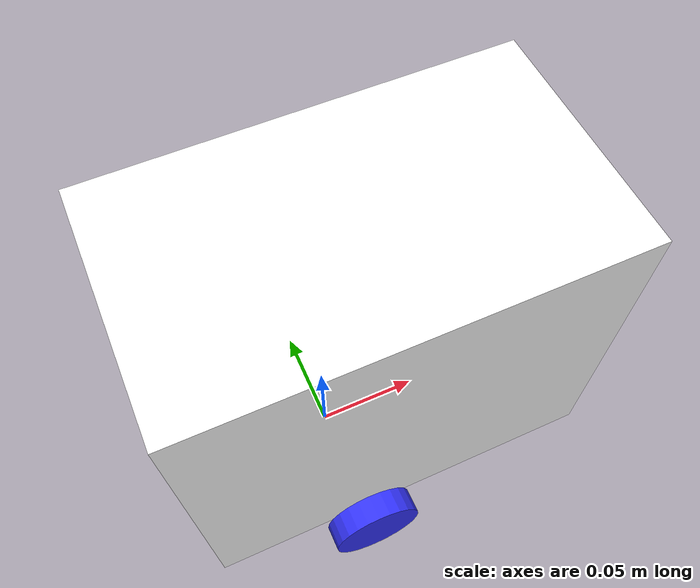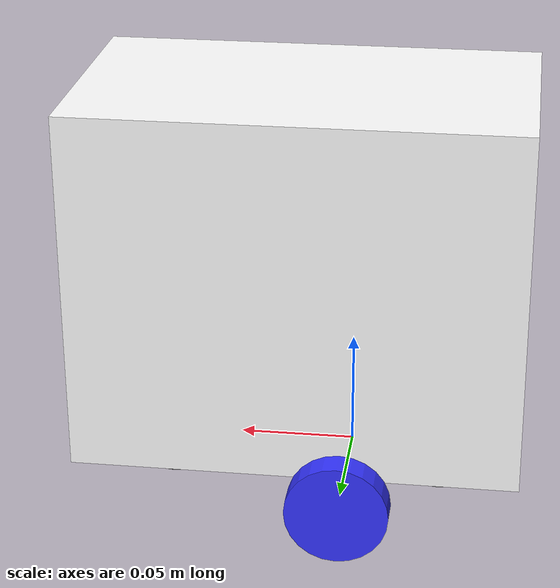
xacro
<?xml version="1.0"?>
<robot xmlns:xacro="http://www.ros.org/wiki/xacro">
    <xacro:include filename="inertial_macros.xacro"/>
    <xacro:include filename="colours.xacro" />

     <!-- BASE LINK -->

    <link name="base_link">
    </link>

    <!-- CHASSIS LINK -->

    <joint name="chassis_joint" type="fixed">
        <parent link="base_link"/>
        <child link="chassis"/>
        <origin xyz="-0.1 0 0"/>
    </joint>

    <link name="chassis">
        <visual>
            <origin xyz="0.12 0 0.088"/>
            <geometry>
                <box size="0.19 0.111 0.155"/>
            </geometry>
            <material name="white"/>
        </visual>
        <collision>
            <origin xyz="0.12 0 0.088"/>
            <geometry>
                <box size="0.19 0.111 0.155"/>
            </geometry>
        </collision>
        <xacro:inertial_box mass="0.5" x="0.19" y="0.111" z="0.155">
            <origin xyz="0.12 0 0.088" rpy="0 0 0"/>
        </xacro:inertial_box>
    </link>

    <gazebo reference="chassis">
        <material>Gazebo/White</material>
    </gazebo>

    <!-- LEFT WHEEL LINK -->

    <joint name="left_wheel_joint" type="continuous">
        <parent link="base_link"/>
        <child link="left_wheel"/>
        <origin xyz="0 0.0615 0" rpy="-${pi/2} 0 0" />
        <axis xyz="0 0 1"/>
    </joint>

    <link name="left_wheel">
        <visual>
            <geometry>
                <cylinder radius="0.022" length="0.012"/>
            </geometry>
            <material name="blue"/>
        </visual>
        <collision>
            <geometry>
                <sphere radius="0.022"/>
            </geometry>
        </collision>
        <xacro:inertial_cylinder mass="0.1" length="0.012" radius="0.022">
            <origin xyz="0 0 0" rpy="0 0 0"/>
        </xacro:inertial_cylinder>
    </link>

    <gazebo reference="left_wheel">
        <material>Gazebo/Blue</material>
    </gazebo>

    <!-- RIGHT WHEEL LINK -->

    <joint name="right_wheel_joint" type="continuous">
        <parent link="base_link"/>
        <child link="right_wheel"/>
        <origin xyz="0 -0.0615 0" rpy="${pi/2} 0 0" />
        <axis xyz="0 0 -1"/>
    </joint>

    <link name="right_wheel">
        <visual>
            <geometry>
                <cylinder radius="0.022" length="0.012"/>
            </geometry>
            <material name="blue"/>
        </visual>
        <collision>
            <geometry>
                <sphere radius="0.022"/>
            </geometry>
        </collision>
        <xacro:inertial_cylinder mass="0.1" length="0.012" radius="0.022">
            <origin xyz="0 0 0" rpy="0 0 0"/>
        </xacro:inertial_cylinder>
    </link>

    <gazebo reference="right_wheel">
        <material>Gazebo/Blue</material>
    </gazebo>

    <!-- CASTER WHEEL LINK -->

    <joint name="caster_wheel_joint" type="fixed">
        <parent link="chassis"/>
        <child link="caster_wheel"/>
        <origin xyz="0.18 0 0"/>
    </joint>

    <link name="caster_wheel">
        <visual>
            <geometry>
                <sphere radius="0.02"/>
            </geometry>
            <material name="black"/>
        </visual>
        <collision>
            <geometry>
                <sphere radius="0.02"/>
            </geometry>
        </collision>
        <xacro:inertial_sphere mass="0.1" radius="0.02">
            <origin xyz="0 0 0" rpy="0 0 0"/>
        </xacro:inertial_sphere>
    </link>

    <gazebo reference="caster_wheel">
        <material>Gazebo/Black</material>
        <mu1 value="0.001"/>
        <mu2 value="0.001"/>
    </gazebo>

    <!-- BACK CASTER WHEEL LINK -->

    <joint name="back_caster_wheel_joint" type="fixed">
        <parent link="chassis"/>
        <child link="back_caster_wheel"/>
        <origin xyz="0.06 0 0"/>
    </joint>

    <link name="back_caster_wheel">
        <visual>
            <geometry>
                <sphere radius="0.02"/>
            </geometry>
            <material name="black"/>
        </visual>
        <collision>
            <geometry>
                <sphere radius="0.02"/>
            </geometry>
        </collision>
        <xacro:inertial_sphere mass="0.1" radius="0.02">
            <origin xyz="0 0 0" rpy="0 0 0"/>
        </xacro:inertial_sphere>
    </link>

    <gazebo reference="back_caster_wheel">
        <material>Gazebo/Black</material>
        <mu1 value="0.001"/>
        <mu2 value="0.001"/>
    </gazebo>

    <gazebo>
        <plugin name="joint_state_publisher" filename="libgazebo_ros_joint_state_publisher.so">
            <jointName>left_wheel,right_wheel</jointName>
        </plugin>
    </gazebo>
</robot>

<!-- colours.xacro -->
<robot xmlns:xacro="http://www.ros.org/wiki/xacro">
    <material name="white">
        <color rgba="1 1 1 1" />
    </material>

    <material name="orange">
        <color rgba="1 0.3 0.1 1"/>
    </material>

    <material name="blue">
        <color rgba="0.2 0.2 1 1"/>
    </material>

    <material name="black">
        <color rgba="0 0 0 1"/>
    </material>

    <material name="red">
        <color rgba="1 0 0 1"/>
    </material>
</robot>
